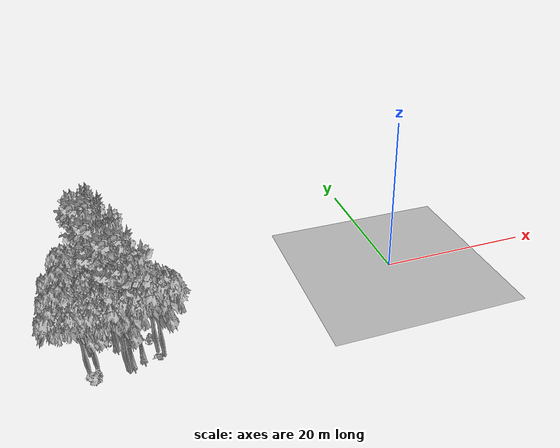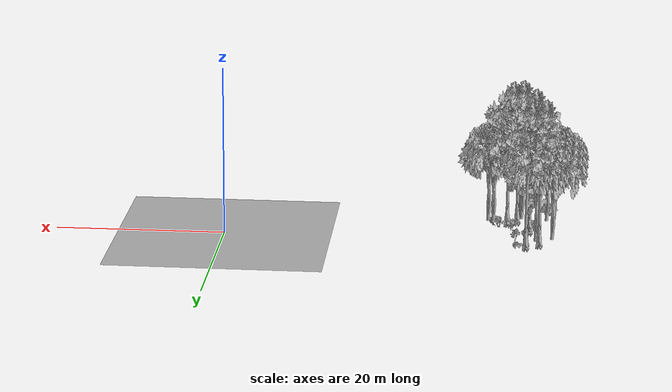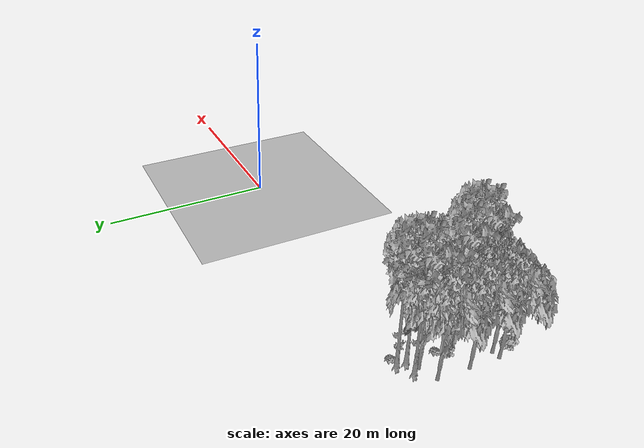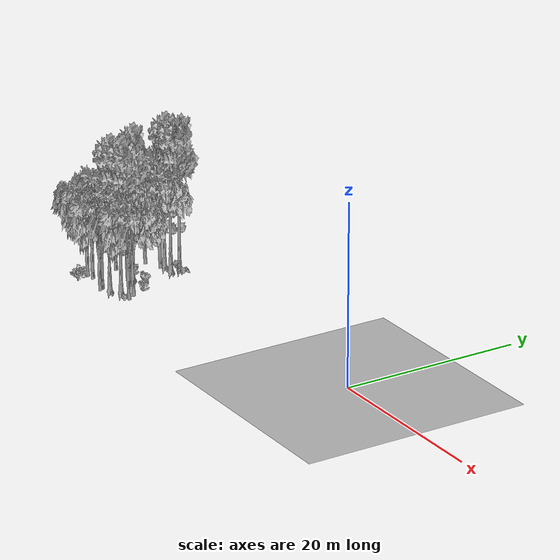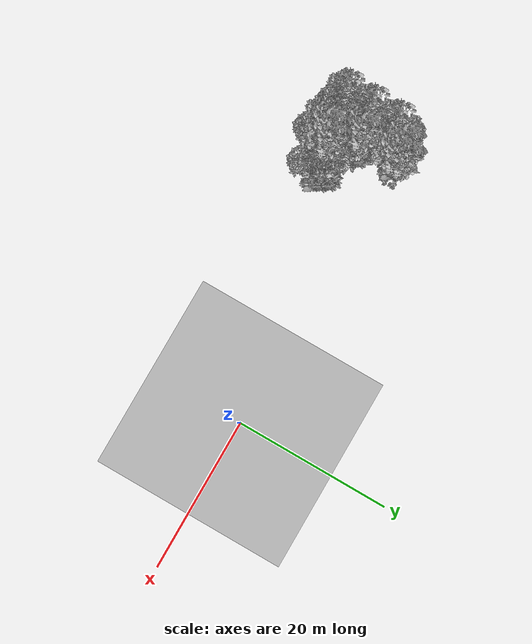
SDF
<sdf version="1.7">
 <world name="default">
  <model name="ground_plane">
   <static>1</static>
   <link name="link">
    <collision name="collision">
     <pose>-50 0 0 0 -0 0</pose>
     <geometry><plane><normal>0 0 1</normal><size>80 80</size></plane></geometry>
     <surface><contact><ode><min_depth>0.01</min_depth><max_vel>0</max_vel></ode></contact></surface>
    </collision>
    <visual name="grass">
     <cast_shadows>0</cast_shadows>
     <geometry>
      <mesh>
       <scale>0.46714285714285714 0.46714285714285714 0.1</scale>
       <uri>file://grass_plane/meshes/grass_plane.dae</uri>
      </mesh>
     </geometry>
    </visual>
   </link>
  </model>
  <model name="Tree 3">
   <static>1</static>
   <pose>-35.58539830558576 -5.026673597463727 0 1.57079 -0 0</pose>
   <link name="link">
    <collision name="collision">
     <geometry><mesh><scale>3.5 5 3.5</scale><uri>model://tree_2/meshes/tree_2.obj</uri></mesh></geometry>
    </collision>
    <visual name="visual">
     <geometry><mesh><scale>3.5 5 3.5</scale><uri>model://tree_2/meshes/tree_2.obj</uri></mesh></geometry>
    </visual>
   </link>
  </model>
  <model name="Tree 38">
   <static>1</static>
   <pose>-36.57298107803156 -0.4002440459340306 0 1.57079 -0 0</pose>
   <link name="link">
    <collision name="collision">
     <geometry><mesh><scale>3.5 5 3.5</scale><uri>model://tree_2/meshes/tree_2.obj</uri></mesh></geometry>
    </collision>
    <visual name="visual">
     <geometry><mesh><scale>3.5 5 3.5</scale><uri>model://tree_2/meshes/tree_2.obj</uri></mesh></geometry>
    </visual>
   </link>
  </model>
  <model name="Tree 66">
   <static>1</static>
   <pose>-30.89337349765999 -7.5270400970730975 0 1.57079 -0 0</pose>
   <link name="link">
    <collision name="collision">
     <geometry><mesh><scale>3.5 5 3.5</scale><uri>model://tree_2/meshes/tree_2.obj</uri></mesh></geometry>
    </collision>
    <visual name="visual">
     <geometry><mesh><scale>3.5 5 3.5</scale><uri>model://tree_2/meshes/tree_2.obj</uri></mesh></geometry>
    </visual>
   </link>
  </model>
  <model name="Tree 70">
   <static>1</static>
   <pose>-35.71082991011583 -4.274225363163552 0 1.57079 -0 0</pose>
   <link name="link">
    <collision name="collision">
     <geometry><mesh><scale>3.5 5 3.5</scale><uri>model://tree_9/meshes/tree_9.obj</uri></mesh></geometry>
    </collision>
    <visual name="visual">
     <geometry><mesh><scale>3.5 5 3.5</scale><uri>model://tree_9/meshes/tree_9.obj</uri></mesh></geometry>
    </visual>
   </link>
  </model>
  <model name="Tree 234">
   <static>1</static>
   <pose>-38.493027132893324 -1.168438556997451 0 1.57079 -0 0</pose>
   <link name="link">
    <collision name="collision">
     <geometry><mesh><scale>3.5 5 3.5</scale><uri>model://tree_2/meshes/tree_2.obj</uri></mesh></geometry>
    </collision>
    <visual name="visual">
     <geometry><mesh><scale>3.5 5 3.5</scale><uri>model://tree_2/meshes/tree_2.obj</uri></mesh></geometry>
    </visual>
   </link>
  </model>
  <model name="Tree 248">
   <static>1</static>
   <pose>-37.839525539012186 -8.008428908837047 0 1.57079 -0 0</pose>
   <link name="link">
    <collision name="collision">
     <geometry><mesh><scale>3.5 5 3.5</scale><uri>model://tree_2/meshes/tree_2.obj</uri></mesh></geometry>
    </collision>
    <visual name="visual">
     <geometry><mesh><scale>3.5 5 3.5</scale><uri>model://tree_2/meshes/tree_2.obj</uri></mesh></geometry>
    </visual>
   </link>
  </model>
  <model name="Tree 252">
   <static>1</static>
   <pose>-38.60586577154509 -4.737638003397741 0 1.57079 -0 0</pose>
   <link name="link">
    <collision name="collision">
     <geometry><mesh><scale>3.5 5 3.5</scale><uri>model://tree_2/meshes/tree_2.obj</uri></mesh></geometry>
    </collision>
    <visual name="visual">
     <geometry><mesh><scale>3.5 5 3.5</scale><uri>model://tree_2/meshes/tree_2.obj</uri></mesh></geometry>
    </visual>
   </link>
  </model>
  <model name="Tree 271">
   <static>1</static>
   <pose>-34.86680295443135 -8.511112710806266 0 1.57079 -0 0</pose>
   <link name="link">
    <collision name="collision">
     <geometry><mesh><scale>3.5 5 3.5</scale><uri>model://tree_2/meshes/tree_2.obj</uri></mesh></geometry>
    </collision>
    <visual name="visual">
     <geometry><mesh><scale>3.5 5 3.5</scale><uri>model://tree_2/meshes/tree_2.obj</uri></mesh></geometry>
    </visual>
   </link>
  </model>
  <model name="Tree 297">
   <static>1</static>
   <pose>-38.69810319239297 -8.153917592764259 0 1.57079 -0 0</pose>
   <link name="link">
    <collision name="collision">
     <geometry><mesh><scale>3.5 5 3.5</scale><uri>model://tree_2/meshes/tree_2.obj</uri></mesh></geometry>
    </collision>
    <visual name="visual">
     <geometry><mesh><scale>3.5 5 3.5</scale><uri>model://tree_2/meshes/tree_2.obj</uri></mesh></geometry>
    </visual>
   </link>
  </model>
  <model name="Tree 357">
   <static>1</static>
   <pose>-33.066940522768306 -7.215302342320342 0 1.57079 -0 0</pose>
   <link name="link">
    <collision name="collision">
     <geometry><mesh><scale>3.5 5 3.5</scale><uri>model://tree_9/meshes/tree_9.obj</uri></mesh></geometry>
    </collision>
    <visual name="visual">
     <geometry><mesh><scale>3.5 5 3.5</scale><uri>model://tree_9/meshes/tree_9.obj</uri></mesh></geometry>
    </visual>
   </link>
  </model>
  <model name="Tree 457">
   <static>1</static>
   <pose>-36.881711237387364 0.35509949061336243 0 1.57079 -0 0</pose>
   <link name="link">
    <collision name="collision">
     <geometry><mesh><scale>3.5 5 3.5</scale><uri>model://tree_9/meshes/tree_9.obj</uri></mesh></geometry>
    </collision>
    <visual name="visual">
     <geometry><mesh><scale>3.5 5 3.5</scale><uri>model://tree_9/meshes/tree_9.obj</uri></mesh></geometry>
    </visual>
   </link>
  </model>
  <model name="Tree 461">
   <static>1</static>
   <pose>-35.345708969669396 1.3277490544815151 0 1.57079 -0 0</pose>
   <link name="link">
    <collision name="collision">
     <geometry><mesh><scale>3.5 5 3.5</scale><uri>model://tree_9/meshes/tree_9.obj</uri></mesh></geometry>
    </collision>
    <visual name="visual">
     <geometry><mesh><scale>3.5 5 3.5</scale><uri>model://tree_9/meshes/tree_9.obj</uri></mesh></geometry>
    </visual>
   </link>
  </model>
  <model name="Tree 536">
   <static>1</static>
   <pose>-31.489269322828747 -6.644538678480714 0 1.57079 -0 0</pose>
   <link name="link">
    <collision name="collision">
     <geometry><mesh><scale>3.5 5 3.5</scale><uri>model://tree_2/meshes/tree_2.obj</uri></mesh></geometry>
    </collision>
    <visual name="visual">
     <geometry><mesh><scale>3.5 5 3.5</scale><uri>model://tree_2/meshes/tree_2.obj</uri></mesh></geometry>
    </visual>
   </link>
  </model>
  <model name="Tree 541">
   <static>1</static>
   <pose>-34.68162570208808 -8.888434231460884 0 1.57079 -0 0</pose>
   <link name="link">
    <collision name="collision">
     <geometry><mesh><scale>3.5 5 3.5</scale><uri>model://tree_2/meshes/tree_2.obj</uri></mesh></geometry>
    </collision>
    <visual name="visual">
     <geometry><mesh><scale>3.5 5 3.5</scale><uri>model://tree_2/meshes/tree_2.obj</uri></mesh></geometry>
    </visual>
   </link>
  </model>
  <model name="Tree 579">
   <static>1</static>
   <pose>-35.355422694198424 0.25322906751476637 0 1.57079 -0 0</pose>
   <link name="link">
    <collision name="collision">
     <geometry><mesh><scale>3.5 5 3.5</scale><uri>model://tree_9/meshes/tree_9.obj</uri></mesh></geometry>
    </collision>
    <visual name="visual">
     <geometry><mesh><scale>3.5 5 3.5</scale><uri>model://tree_9/meshes/tree_9.obj</uri></mesh></geometry>
    </visual>
   </link>
  </model>
  <model name="Tree 611">
   <static>1</static>
   <pose>-34.23170847755552 -7.911194788503522 0 1.57079 -0 0</pose>
   <link name="link">
    <collision name="collision">
     <geometry><mesh><scale>3.5 5 3.5</scale><uri>model://tree_9/meshes/tree_9.obj</uri></mesh></geometry>
    </collision>
    <visual name="visual">
     <geometry><mesh><scale>3.5 5 3.5</scale><uri>model://tree_9/meshes/tree_9.obj</uri></mesh></geometry>
    </visual>
   </link>
  </model>
  <model name="Bush 133">
   <static>1</static>
   <pose>-33.569449084336306 -3.9204686462699954 0 1.57079 -0 0</pose>
   <link name="link">
    <collision name="collision">
     <geometry><mesh><scale>2 2 2</scale><uri>model://bush_0/meshes/bush_0.obj</uri></mesh></geometry>
     <surface><contact><collide_without_contact>false</collide_without_contact></contact></surface>
    </collision>
    <visual name="visual">
     <geometry><mesh><scale>2 2 2</scale><uri>model://bush_0/meshes/bush_0.obj</uri></mesh></geometry>
    </visual>
   </link>
  </model>
  <model name="Bush 247">
   <static>1</static>
   <pose>-34.40689818353146 1.406619371075962 0 1.57079 -0 0</pose>
   <link name="link">
    <collision name="collision">
     <geometry><mesh><scale>2 2 2</scale><uri>model://bush_2/meshes/bush_2.obj</uri></mesh></geometry>
     <surface><contact><collide_without_contact>false</collide_without_contact></contact></surface>
    </collision>
    <visual name="visual">
     <geometry><mesh><scale>2 2 2</scale><uri>model://bush_2/meshes/bush_2.obj</uri></mesh></geometry>
    </visual>
   </link>
  </model>
  <model name="Bush 248">
   <static>1</static>
   <pose>-35.362921051673176 -3.0322305725865277 0 1.57079 -0 0</pose>
   <link name="link">
    <collision name="collision">
     <geometry><mesh><scale>2 2 2</scale><uri>model://bush_2/meshes/bush_2.obj</uri></mesh></geometry>
     <surface><contact><collide_without_contact>false</collide_without_contact></contact></surface>
    </collision>
    <visual name="visual">
     <geometry><mesh><scale>2 2 2</scale><uri>model://bush_2/meshes/bush_2.obj</uri></mesh></geometry>
    </visual>
   </link>
  </model>
  <model name="Bush 344">
   <static>1</static>
   <pose>-38.09666165158681 -9.663526616941873 0 1.57079 -0 0</pose>
   <link name="link">
    <collision name="collision">
     <geometry><mesh><scale>2 2 2</scale><uri>model://bush_1/meshes/bush_1.obj</uri></mesh></geometry>
     <surface><contact><collide_without_contact>false</collide_without_contact></contact></surface>
    </collision>
    <visual name="visual">
     <geometry><mesh><scale>2 2 2</scale><uri>model://bush_1/meshes/bush_1.obj</uri></mesh></geometry>
    </visual>
   </link>
  </model>
  <model name="Bush 357">
   <static>1</static>
   <pose>-31.456764234932287 -7.582643638043258 0 1.57079 -0 0</pose>
   <link name="link">
    <collision name="collision">
     <geometry><mesh><scale>2 2 2</scale><uri>model://bush_2/meshes/bush_2.obj</uri></mesh></geometry>
     <surface><contact><collide_without_contact>false</collide_without_contact></contact></surface>
    </collision>
    <visual name="visual">
     <geometry><mesh><scale>2 2 2</scale><uri>model://bush_2/meshes/bush_2.obj</uri></mesh></geometry>
    </visual>
   </link>
  </model>
  <model name="Bush 424">
   <static>1</static>
   <pose>-34.09332566872844 0.4304301827528434 0 1.57079 -0 0</pose>
   <link name="link">
    <collision name="collision">
     <geometry><mesh><scale>2 2 2</scale><uri>model://bush_5/meshes/bush_5.obj</uri></mesh></geometry>
     <surface><contact><collide_without_contact>false</collide_without_contact></contact></surface>
    </collision>
    <visual name="visual">
     <geometry><mesh><scale>2 2 2</scale><uri>model://bush_5/meshes/bush_5.obj</uri></mesh></geometry>
    </visual>
   </link>
  </model>
  <model name="Bush 437">
   <static>1</static>
   <pose>-32.09596135108127 -5.084050673850832 0 1.57079 -0 0</pose>
   <link name="link">
    <collision name="collision">
     <geometry><mesh><scale>2 2 2</scale><uri>model://bush_4/meshes/bush_4.obj</uri></mesh></geometry>
     <surface><contact><collide_without_contact>false</collide_without_contact></contact></surface>
    </collision>
    <visual name="visual">
     <geometry><mesh><scale>2 2 2</scale><uri>model://bush_4/meshes/bush_4.obj</uri></mesh></geometry>
    </visual>
   </link>
  </model>
  <model name="Bush 592">
   <static>1</static>
   <pose>-36.37430739002505 -3.898593813147855 0 1.57079 -0 0</pose>
   <link name="link">
    <collision name="collision">
     <geometry><mesh><scale>2 2 2</scale><uri>model://bush_4/meshes/bush_4.obj</uri></mesh></geometry>
     <surface><contact><collide_without_contact>false</collide_without_contact></contact></surface>
    </collision>
    <visual name="visual">
     <geometry><mesh><scale>2 2 2</scale><uri>model://bush_4/meshes/bush_4.obj</uri></mesh></geometry>
    </visual>
   </link>
  </model>
 </world>
</sdf>
